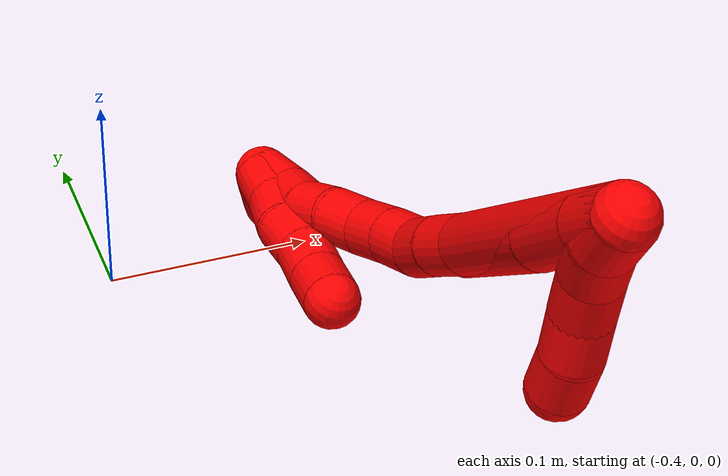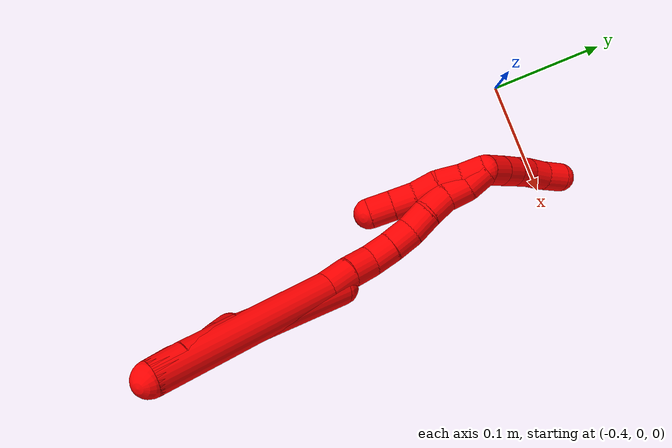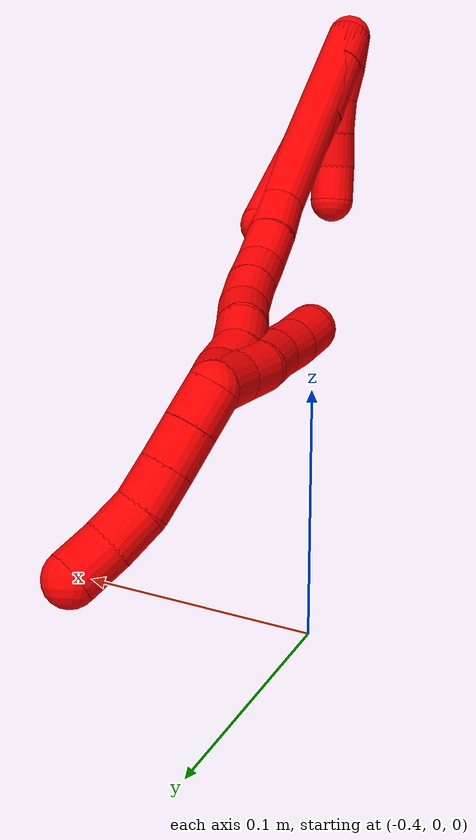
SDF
<sdf version="1.7">
 <world name="default">
  <model name="2">
   <static>0</static>
   <link name="2">
    <collision name="collision-cylinder-e_1_2_8">
     <pose>-0.003775 0.004017 -0.010577 -2.77862 -0.322037 1.44906</pose>
     <geometry><cylinder><radius>0.0125</radius><length>0.023854</length></cylinder></geometry>
     <surface>
      <friction><ode><mu>1.16</mu><mu2>1.16</mu2><slip1>0</slip1><slip2>0</slip2></ode></friction>
      <contact><ode><kp>1e+06</kp><kd>1</kd><max_vel>0</max_vel><min_depth>0.001</min_depth></ode></contact>
     </surface>
    </collision>
    <visual name="visual-cylinder-e_1_2_8">
     <pose>-0.003775 0.004017 -0.010577 -2.77862 -0.322037 1.44906</pose>
     <geometry><cylinder><radius>0.0125</radius><length>0.023854</length></cylinder></geometry>
     <material><ambient>1 0 0 1</ambient></material>
    </visual>
    <collision name="collision-cylinder-e_2_8_9">
     <pose>-0.013259 0.015264 -0.039621 -2.76843 -0.280307 1.28357</pose>
     <geometry><cylinder><radius>0.0125</radius><length>0.041275</length></cylinder></geometry>
     <surface>
      <friction><ode><mu>1.16</mu><mu2>1.16</mu2><slip1>0</slip1><slip2>0</slip2></ode></friction>
      <contact><ode><kp>1e+06</kp><kd>1</kd><max_vel>0</max_vel><min_depth>0.001</min_depth></ode></contact>
     </surface>
    </collision>
    <visual name="visual-cylinder-e_2_8_9">
     <pose>-0.013259 0.015264 -0.039621 -2.76843 -0.280307 1.28357</pose>
     <geometry><cylinder><radius>0.0125</radius><length>0.041275</length></cylinder></geometry>
     <material><ambient>1 0 0 1</ambient></material>
    </visual>
    <collision name="collision-cylinder-e_3_9_6">
     <pose>-0.030662 0.040716 -0.094584 -2.67852 -0.279166 1.07484</pose>
     <geometry><cylinder><radius>0.0125</radius><length>0.084871</length></cylinder></geometry>
     <surface>
      <friction><ode><mu>1.16</mu><mu2>1.16</mu2><slip1>0</slip1><slip2>0</slip2></ode></friction>
      <contact><ode><kp>1e+06</kp><kd>1</kd><max_vel>0</max_vel><min_depth>0.001</min_depth></ode></contact>
     </surface>
    </collision>
    <visual name="visual-cylinder-e_3_9_6">
     <pose>-0.030662 0.040716 -0.094584 -2.67852 -0.279166 1.07484</pose>
     <geometry><cylinder><radius>0.0125</radius><length>0.084871</length></cylinder></geometry>
     <material><ambient>1 0 0 1</ambient></material>
    </visual>
    <collision name="collision-cylinder-e_1_2_10">
     <pose>-0.000248 0.001408 -0.009897 -3.0003 -0.024827 0.347336</pose>
     <geometry><cylinder><radius>0.0125</radius><length>0.02</length></cylinder></geometry>
     <surface>
      <friction><ode><mu>1.16</mu><mu2>1.16</mu2><slip1>0</slip1><slip2>0</slip2></ode></friction>
      <contact><ode><kp>1e+06</kp><kd>1</kd><max_vel>0</max_vel><min_depth>0.001</min_depth></ode></contact>
     </surface>
    </collision>
    <visual name="visual-cylinder-e_1_2_10">
     <pose>-0.000248 0.001408 -0.009897 -3.0003 -0.024827 0.347336</pose>
     <geometry><cylinder><radius>0.0125</radius><length>0.02</length></cylinder></geometry>
     <material><ambient>1 0 0 1</ambient></material>
    </visual>
    <collision name="collision-cylinder-e_2_10_11">
     <pose>0.001083 0.004483 -0.029527 -2.97192 0.1586 -1.50306</pose>
     <geometry><cylinder><radius>0.0125</radius><length>0.02</length></cylinder></geometry>
     <surface>
      <friction><ode><mu>1.16</mu><mu2>1.16</mu2><slip1>0</slip1><slip2>0</slip2></ode></friction>
      <contact><ode><kp>1e+06</kp><kd>1</kd><max_vel>0</max_vel><min_depth>0.001</min_depth></ode></contact>
     </surface>
    </collision>
    <visual name="visual-cylinder-e_2_10_11">
     <pose>0.001083 0.004483 -0.029527 -2.97192 0.1586 -1.50306</pose>
     <geometry><cylinder><radius>0.0125</radius><length>0.02</length></cylinder></geometry>
     <material><ambient>1 0 0 1</ambient></material>
    </visual>
    <collision name="collision-cylinder-e_3_11_12">
     <pose>0.005127 0.005901 -0.048948 3.11591 0.249042 2.9371</pose>
     <geometry><cylinder><radius>0.0125</radius><length>0.02</length></cylinder></geometry>
     <surface>
      <friction><ode><mu>1.16</mu><mu2>1.16</mu2><slip1>0</slip1><slip2>0</slip2></ode></friction>
      <contact><ode><kp>1e+06</kp><kd>1</kd><max_vel>0</max_vel><min_depth>0.001</min_depth></ode></contact>
     </surface>
    </collision>
    <visual name="visual-cylinder-e_3_11_12">
     <pose>0.005127 0.005901 -0.048948 3.11591 0.249042 2.9371</pose>
     <geometry><cylinder><radius>0.0125</radius><length>0.02</length></cylinder></geometry>
     <material><ambient>1 0 0 1</ambient></material>
    </visual>
    <collision name="collision-cylinder-e_4_12_13">
     <pose>0.0105 0.004248 -0.068101 2.9943 0.295082 2.22004</pose>
     <geometry><cylinder><radius>0.0125</radius><length>0.02</length></cylinder></geometry>
     <surface>
      <friction><ode><mu>1.16</mu><mu2>1.16</mu2><slip1>0</slip1><slip2>0</slip2></ode></friction>
      <contact><ode><kp>1e+06</kp><kd>1</kd><max_vel>0</max_vel><min_depth>0.001</min_depth></ode></contact>
     </surface>
    </collision>
    <visual name="visual-cylinder-e_4_12_13">
     <pose>0.0105 0.004248 -0.068101 2.9943 0.295082 2.22004</pose>
     <geometry><cylinder><radius>0.0125</radius><length>0.02</length></cylinder></geometry>
     <material><ambient>1 0 0 1</ambient></material>
    </visual>
    <collision name="collision-cylinder-e_5_13_5">
     <pose>0.014992 0.002451 -0.087431 3.10176 0.159088 2.65189</pose>
     <geometry><cylinder><radius>0.0125</radius><length>0.02</length></cylinder></geometry>
     <surface>
      <friction><ode><mu>1.16</mu><mu2>1.16</mu2><slip1>0</slip1><slip2>0</slip2></ode></friction>
      <contact><ode><kp>1e+06</kp><kd>1</kd><max_vel>0</max_vel><min_depth>0.001</min_depth></ode></contact>
     </surface>
    </collision>
    <visual name="visual-cylinder-e_5_13_5">
     <pose>0.014992 0.002451 -0.087431 3.10176 0.159088 2.65189</pose>
     <geometry><cylinder><radius>0.0125</radius><length>0.02</length></cylinder></geometry>
     <material><ambient>1 0 0 1</ambient></material>
    </visual>
    <collision name="collision-cylinder-e_1_2_14">
     <pose>-0.021163 0.025268 -0.05984 -2.74205 -0.314953 1.33014</pose>
     <geometry><cylinder><radius>0.0125</radius><length>0.136634</length></cylinder></geometry>
     <surface>
      <friction><ode><mu>1.16</mu><mu2>1.16</mu2><slip1>0</slip1><slip2>0</slip2></ode></friction>
      <contact><ode><kp>1e+06</kp><kd>1</kd><max_vel>0</max_vel><min_depth>0.001</min_depth></ode></contact>
     </surface>
    </collision>
    <visual name="visual-cylinder-e_1_2_14">
     <pose>-0.021163 0.025268 -0.05984 -2.74205 -0.314953 1.33014</pose>
     <geometry><cylinder><radius>0.0125</radius><length>0.136634</length></cylinder></geometry>
     <material><ambient>1 0 0 1</ambient></material>
    </visual>
    <collision name="collision-cylinder-e_2_14_15">
     <pose>-0.047097 0.053813 -0.129092 -2.80657 -0.446541 1.86135</pose>
     <geometry><cylinder><radius>0.0125</radius><length>0.022096</length></cylinder></geometry>
     <surface>
      <friction><ode><mu>1.16</mu><mu2>1.16</mu2><slip1>0</slip1><slip2>0</slip2></ode></friction>
      <contact><ode><kp>1e+06</kp><kd>1</kd><max_vel>0</max_vel><min_depth>0.001</min_depth></ode></contact>
     </surface>
    </collision>
    <visual name="visual-cylinder-e_2_14_15">
     <pose>-0.047097 0.053813 -0.129092 -2.80657 -0.446541 1.86135</pose>
     <geometry><cylinder><radius>0.0125</radius><length>0.022096</length></cylinder></geometry>
     <material><ambient>1 0 0 1</ambient></material>
    </visual>
    <collision name="collision-cylinder-e_3_15_16">
     <pose>-0.055597 0.060862 -0.147655 -2.75053 -0.360288 1.48698</pose>
     <geometry><cylinder><radius>0.0125</radius><length>0.021159</length></cylinder></geometry>
     <surface>
      <friction><ode><mu>1.16</mu><mu2>1.16</mu2><slip1>0</slip1><slip2>0</slip2></ode></friction>
      <contact><ode><kp>1e+06</kp><kd>1</kd><max_vel>0</max_vel><min_depth>0.001</min_depth></ode></contact>
     </surface>
    </collision>
    <visual name="visual-cylinder-e_3_15_16">
     <pose>-0.055597 0.060862 -0.147655 -2.75053 -0.360288 1.48698</pose>
     <geometry><cylinder><radius>0.0125</radius><length>0.021159</length></cylinder></geometry>
     <material><ambient>1 0 0 1</ambient></material>
    </visual>
    <collision name="collision-cylinder-e_4_16_17">
     <pose>-0.065603 0.068457 -0.163611 -2.62979 -0.677412 1.86397</pose>
     <geometry><cylinder><radius>0.0125</radius><length>0.020027</length></cylinder></geometry>
     <surface>
      <friction><ode><mu>1.16</mu><mu2>1.16</mu2><slip1>0</slip1><slip2>0</slip2></ode></friction>
      <contact><ode><kp>1e+06</kp><kd>1</kd><max_vel>0</max_vel><min_depth>0.001</min_depth></ode></contact>
     </surface>
    </collision>
    <visual name="visual-cylinder-e_4_16_17">
     <pose>-0.065603 0.068457 -0.163611 -2.62979 -0.677412 1.86397</pose>
     <geometry><cylinder><radius>0.0125</radius><length>0.020027</length></cylinder></geometry>
     <material><ambient>1 0 0 1</ambient></material>
    </visual>
    <collision name="collision-cylinder-e_5_17_18">
     <pose>-0.078308 0.075418 -0.17741 -2.71979 -0.697596 2.07748</pose>
     <geometry><cylinder><radius>0.0125</radius><length>0.020013</length></cylinder></geometry>
     <surface>
      <friction><ode><mu>1.16</mu><mu2>1.16</mu2><slip1>0</slip1><slip2>0</slip2></ode></friction>
      <contact><ode><kp>1e+06</kp><kd>1</kd><max_vel>0</max_vel><min_depth>0.001</min_depth></ode></contact>
     </surface>
    </collision>
    <visual name="visual-cylinder-e_5_17_18">
     <pose>-0.078308 0.075418 -0.17741 -2.71979 -0.697596 2.07748</pose>
     <geometry><cylinder><radius>0.0125</radius><length>0.020013</length></cylinder></geometry>
     <material><ambient>1 0 0 1</ambient></material>
    </visual>
    <collision name="collision-cylinder-e_6_18_19">
     <pose>-0.09271 0.08067 -0.190106 -2.78667 -0.919508 2.44656</pose>
     <geometry><cylinder><radius>0.0125</radius><length>0.020053</length></cylinder></geometry>
     <surface>
      <friction><ode><mu>1.16</mu><mu2>1.16</mu2><slip1>0</slip1><slip2>0</slip2></ode></friction>
      <contact><ode><kp>1e+06</kp><kd>1</kd><max_vel>0</max_vel><min_depth>0.001</min_depth></ode></contact>
     </surface>
    </collision>
    <visual name="visual-cylinder-e_6_18_19">
     <pose>-0.09271 0.08067 -0.190106 -2.78667 -0.919508 2.44656</pose>
     <geometry><cylinder><radius>0.0125</radius><length>0.020053</length></cylinder></geometry>
     <material><ambient>1 0 0 1</ambient></material>
    </visual>
    <collision name="collision-cylinder-e_7_19_20">
     <pose>-0.107373 0.085252 -0.20282 -2.8031 -0.732536 2.30338</pose>
     <geometry><cylinder><radius>0.0125</radius><length>0.020006</length></cylinder></geometry>
     <surface>
      <friction><ode><mu>1.16</mu><mu2>1.16</mu2><slip1>0</slip1><slip2>0</slip2></ode></friction>
      <contact><ode><kp>1e+06</kp><kd>1</kd><max_vel>0</max_vel><min_depth>0.001</min_depth></ode></contact>
     </surface>
    </collision>
    <visual name="visual-cylinder-e_7_19_20">
     <pose>-0.107373 0.085252 -0.20282 -2.8031 -0.732536 2.30338</pose>
     <geometry><cylinder><radius>0.0125</radius><length>0.020006</length></cylinder></geometry>
     <material><ambient>1 0 0 1</ambient></material>
    </visual>
    <collision name="collision-cylinder-e_8_20_21">
     <pose>-0.120219 0.09292 -0.21576 -2.42142 -0.663055 1.48131</pose>
     <geometry><cylinder><radius>0.0125</radius><length>0.020002</length></cylinder></geometry>
     <surface>
      <friction><ode><mu>1.16</mu><mu2>1.16</mu2><slip1>0</slip1><slip2>0</slip2></ode></friction>
      <contact><ode><kp>1e+06</kp><kd>1</kd><max_vel>0</max_vel><min_depth>0.001</min_depth></ode></contact>
     </surface>
    </collision>
    <visual name="visual-cylinder-e_8_20_21">
     <pose>-0.120219 0.09292 -0.21576 -2.42142 -0.663055 1.48131</pose>
     <geometry><cylinder><radius>0.0125</radius><length>0.020002</length></cylinder></geometry>
     <material><ambient>1 0 0 1</ambient></material>
    </visual>
    <collision name="collision-cylinder-e_9_21_1">
     <pose>-0.134832 0.101445 -0.225868 -2.46974 -1.00724 2.01198</pose>
     <geometry><cylinder><radius>0.0125</radius><length>0.02001</length></cylinder></geometry>
     <surface>
      <friction><ode><mu>1.16</mu><mu2>1.16</mu2><slip1>0</slip1><slip2>0</slip2></ode></friction>
      <contact><ode><kp>1e+06</kp><kd>1</kd><max_vel>0</max_vel><min_depth>0.001</min_depth></ode></contact>
     </surface>
    </collision>
    <visual name="visual-cylinder-e_9_21_1">
     <pose>-0.134832 0.101445 -0.225868 -2.46974 -1.00724 2.01198</pose>
     <geometry><cylinder><radius>0.0125</radius><length>0.02001</length></cylinder></geometry>
     <material><ambient>1 0 0 1</ambient></material>
    </visual>
    <collision name="collision-cylinder-e_1_1_22">
     <pose>-0.142972 0.109417 -0.238901 -2.65819 0.031877 -0.129141</pose>
     <geometry><cylinder><radius>0.0125</radius><length>0.02</length></cylinder></geometry>
     <surface>
      <friction><ode><mu>1.16</mu><mu2>1.16</mu2><slip1>0</slip1><slip2>0</slip2></ode></friction>
      <contact><ode><kp>1e+06</kp><kd>1</kd><max_vel>0</max_vel><min_depth>0.001</min_depth></ode></contact>
     </surface>
    </collision>
    <visual name="visual-cylinder-e_1_1_22">
     <pose>-0.142972 0.109417 -0.238901 -2.65819 0.031877 -0.129141</pose>
     <geometry><cylinder><radius>0.0125</radius><length>0.02</length></cylinder></geometry>
     <material><ambient>1 0 0 1</ambient></material>
    </visual>
    <collision name="collision-cylinder-e_2_22_23">
     <pose>-0.142124 0.118638 -0.256627 -2.6657 0.052866 -0.21716</pose>
     <geometry><cylinder><radius>0.0125</radius><length>0.02</length></cylinder></geometry>
     <surface>
      <friction><ode><mu>1.16</mu><mu2>1.16</mu2><slip1>0</slip1><slip2>0</slip2></ode></friction>
      <contact><ode><kp>1e+06</kp><kd>1</kd><max_vel>0</max_vel><min_depth>0.001</min_depth></ode></contact>
     </surface>
    </collision>
    <visual name="visual-cylinder-e_2_22_23">
     <pose>-0.142124 0.118638 -0.256627 -2.6657 0.052866 -0.21716</pose>
     <geometry><cylinder><radius>0.0125</radius><length>0.02</length></cylinder></geometry>
     <material><ambient>1 0 0 1</ambient></material>
    </visual>
    <collision name="collision-cylinder-e_3_23_24">
     <pose>-0.141214 0.127955 -0.274299 -2.64713 0.038233 -0.151209</pose>
     <geometry><cylinder><radius>0.0125</radius><length>0.02</length></cylinder></geometry>
     <surface>
      <friction><ode><mu>1.16</mu><mu2>1.16</mu2><slip1>0</slip1><slip2>0</slip2></ode></friction>
      <contact><ode><kp>1e+06</kp><kd>1</kd><max_vel>0</max_vel><min_depth>0.001</min_depth></ode></contact>
     </surface>
    </collision>
    <visual name="visual-cylinder-e_3_23_24">
     <pose>-0.141214 0.127955 -0.274299 -2.64713 0.038233 -0.151209</pose>
     <geometry><cylinder><radius>0.0125</radius><length>0.02</length></cylinder></geometry>
     <material><ambient>1 0 0 1</ambient></material>
    </visual>
    <collision name="collision-cylinder-e_4_24_25">
     <pose>-0.140489 0.139241 -0.290648 -2.42764 0.034247 -0.09177</pose>
     <geometry><cylinder><radius>0.0125</radius><length>0.02</length></cylinder></geometry>
     <surface>
      <friction><ode><mu>1.16</mu><mu2>1.16</mu2><slip1>0</slip1><slip2>0</slip2></ode></friction>
      <contact><ode><kp>1e+06</kp><kd>1</kd><max_vel>0</max_vel><min_depth>0.001</min_depth></ode></contact>
     </surface>
    </collision>
    <visual name="visual-cylinder-e_4_24_25">
     <pose>-0.140489 0.139241 -0.290648 -2.42764 0.034247 -0.09177</pose>
     <geometry><cylinder><radius>0.0125</radius><length>0.02</length></cylinder></geometry>
     <material><ambient>1 0 0 1</ambient></material>
    </visual>
    <collision name="collision-cylinder-e_5_25_4">
     <pose>-0.141222 0.152988 -0.305055 -2.33134 -0.107716 0.250106</pose>
     <geometry><cylinder><radius>0.0125</radius><length>0.02</length></cylinder></geometry>
     <surface>
      <friction><ode><mu>1.16</mu><mu2>1.16</mu2><slip1>0</slip1><slip2>0</slip2></ode></friction>
      <contact><ode><kp>1e+06</kp><kd>1</kd><max_vel>0</max_vel><min_depth>0.001</min_depth></ode></contact>
     </surface>
    </collision>
    <visual name="visual-cylinder-e_5_25_4">
     <pose>-0.141222 0.152988 -0.305055 -2.33134 -0.107716 0.250106</pose>
     <geometry><cylinder><radius>0.0125</radius><length>0.02</length></cylinder></geometry>
     <material><ambient>1 0 0 1</ambient></material>
    </visual>
    <collision name="collision-cylinder-e_1_1_26">
     <pose>-0.136347 0.09837 -0.226764 1.09643 0.767509 0.483484</pose>
     <geometry><cylinder><radius>0.0125</radius><length>0.02</length></cylinder></geometry>
     <surface>
      <friction><ode><mu>1.16</mu><mu2>1.16</mu2><slip1>0</slip1><slip2>0</slip2></ode></friction>
      <contact><ode><kp>1e+06</kp><kd>1</kd><max_vel>0</max_vel><min_depth>0.001</min_depth></ode></contact>
     </surface>
    </collision>
    <visual name="visual-cylinder-e_1_1_26">
     <pose>-0.136347 0.09837 -0.226764 1.09643 0.767509 0.483484</pose>
     <geometry><cylinder><radius>0.0125</radius><length>0.02</length></cylinder></geometry>
     <material><ambient>1 0 0 1</ambient></material>
    </visual>
    <collision name="collision-cylinder-e_2_26_27">
     <pose>-0.12344 0.08481 -0.219844 1.1012 0.638933 0.400726</pose>
     <geometry><cylinder><radius>0.0125</radius><length>0.02</length></cylinder></geometry>
     <surface>
      <friction><ode><mu>1.16</mu><mu2>1.16</mu2><slip1>0</slip1><slip2>0</slip2></ode></friction>
      <contact><ode><kp>1e+06</kp><kd>1</kd><max_vel>0</max_vel><min_depth>0.001</min_depth></ode></contact>
     </surface>
    </collision>
    <visual name="visual-cylinder-e_2_26_27">
     <pose>-0.12344 0.08481 -0.219844 1.1012 0.638933 0.400726</pose>
     <geometry><cylinder><radius>0.0125</radius><length>0.02</length></cylinder></geometry>
     <material><ambient>1 0 0 1</ambient></material>
    </visual>
    <collision name="collision-cylinder-e_3_27_28">
     <pose>-0.109971 0.07241 -0.212188 0.916012 0.848899 0.438405</pose>
     <geometry><cylinder><radius>0.0125</radius><length>0.02</length></cylinder></geometry>
     <surface>
      <friction><ode><mu>1.16</mu><mu2>1.16</mu2><slip1>0</slip1><slip2>0</slip2></ode></friction>
      <contact><ode><kp>1e+06</kp><kd>1</kd><max_vel>0</max_vel><min_depth>0.001</min_depth></ode></contact>
     </surface>
    </collision>
    <visual name="visual-cylinder-e_3_27_28">
     <pose>-0.109971 0.07241 -0.212188 0.916012 0.848899 0.438405</pose>
     <geometry><cylinder><radius>0.0125</radius><length>0.02</length></cylinder></geometry>
     <material><ambient>1 0 0 1</ambient></material>
    </visual>
    <collision name="collision-cylinder-e_4_28_29">
     <pose>-0.095915 0.06071 -0.204241 1.02498 0.71419 0.413815</pose>
     <geometry><cylinder><radius>0.0125</radius><length>0.02</length></cylinder></geometry>
     <surface>
      <friction><ode><mu>1.16</mu><mu2>1.16</mu2><slip1>0</slip1><slip2>0</slip2></ode></friction>
      <contact><ode><kp>1e+06</kp><kd>1</kd><max_vel>0</max_vel><min_depth>0.001</min_depth></ode></contact>
     </surface>
    </collision>
    <visual name="visual-cylinder-e_4_28_29">
     <pose>-0.095915 0.06071 -0.204241 1.02498 0.71419 0.413815</pose>
     <geometry><cylinder><radius>0.0125</radius><length>0.02</length></cylinder></geometry>
     <material><ambient>1 0 0 1</ambient></material>
    </visual>
    <collision name="collision-cylinder-e_5_29_3">
     <pose>-0.083356 0.047914 -0.195447 0.915485 0.644641 0.326129</pose>
     <geometry><cylinder><radius>0.0125</radius><length>0.02</length></cylinder></geometry>
     <surface>
      <friction><ode><mu>1.16</mu><mu2>1.16</mu2><slip1>0</slip1><slip2>0</slip2></ode></friction>
      <contact><ode><kp>1e+06</kp><kd>1</kd><max_vel>0</max_vel><min_depth>0.001</min_depth></ode></contact>
     </surface>
    </collision>
    <visual name="visual-cylinder-e_5_29_3">
     <pose>-0.083356 0.047914 -0.195447 0.915485 0.644641 0.326129</pose>
     <geometry><cylinder><radius>0.0125</radius><length>0.02</length></cylinder></geometry>
     <material><ambient>1 0 0 1</ambient></material>
    </visual>
    <collision name="collision-sphere-3">
     <pose>-0.077347 0.041577 -0.190576 0 -0 0</pose>
     <geometry><sphere><radius>0.0125</radius></sphere></geometry>
     <surface>
      <friction><ode><mu>1.16</mu><mu2>1.16</mu2><slip1>0</slip1><slip2>0</slip2></ode></friction>
      <contact><ode><kp>1e+06</kp><kd>1</kd><max_vel>0</max_vel><min_depth>0.001</min_depth></ode></contact>
     </surface>
    </collision>
    <visual name="visual-sphere-3">
     <pose>-0.077347 0.041577 -0.190576 0 -0 0</pose>
     <geometry><sphere><radius>0.0125</radius></sphere></geometry>
     <material><ambient>1 0 0 1</ambient></material>
    </visual>
    <collision name="collision-sphere-29">
     <pose>-0.089365 0.054252 -0.200318 0 -0 0</pose>
     <geometry><sphere><radius>0.0125</radius></sphere></geometry>
     <surface>
      <friction><ode><mu>1.16</mu><mu2>1.16</mu2><slip1>0</slip1><slip2>0</slip2></ode></friction>
      <contact><ode><kp>1e+06</kp><kd>1</kd><max_vel>0</max_vel><min_depth>0.001</min_depth></ode></contact>
     </surface>
    </collision>
    <visual name="visual-sphere-29">
     <pose>-0.089365 0.054252 -0.200318 0 -0 0</pose>
     <geometry><sphere><radius>0.0125</radius></sphere></geometry>
     <material><ambient>1 0 0 1</ambient></material>
    </visual>
    <collision name="collision-sphere-28">
     <pose>-0.102466 0.067168 -0.208163 0 -0 0</pose>
     <geometry><sphere><radius>0.0125</radius></sphere></geometry>
     <surface>
      <friction><ode><mu>1.16</mu><mu2>1.16</mu2><slip1>0</slip1><slip2>0</slip2></ode></friction>
      <contact><ode><kp>1e+06</kp><kd>1</kd><max_vel>0</max_vel><min_depth>0.001</min_depth></ode></contact>
     </surface>
    </collision>
    <visual name="visual-sphere-28">
     <pose>-0.102466 0.067168 -0.208163 0 -0 0</pose>
     <geometry><sphere><radius>0.0125</radius></sphere></geometry>
     <material><ambient>1 0 0 1</ambient></material>
    </visual>
    <collision name="collision-sphere-27">
     <pose>-0.117477 0.077651 -0.216212 0 -0 0</pose>
     <geometry><sphere><radius>0.0125</radius></sphere></geometry>
     <surface>
      <friction><ode><mu>1.16</mu><mu2>1.16</mu2><slip1>0</slip1><slip2>0</slip2></ode></friction>
      <contact><ode><kp>1e+06</kp><kd>1</kd><max_vel>0</max_vel><min_depth>0.001</min_depth></ode></contact>
     </surface>
    </collision>
    <visual name="visual-sphere-27">
     <pose>-0.117477 0.077651 -0.216212 0 -0 0</pose>
     <geometry><sphere><radius>0.0125</radius></sphere></geometry>
     <material><ambient>1 0 0 1</ambient></material>
    </visual>
    <collision name="collision-sphere-26">
     <pose>-0.129403 0.091968 -0.223477 0 -0 0</pose>
     <geometry><sphere><radius>0.0125</radius></sphere></geometry>
     <surface>
      <friction><ode><mu>1.16</mu><mu2>1.16</mu2><slip1>0</slip1><slip2>0</slip2></ode></friction>
      <contact><ode><kp>1e+06</kp><kd>1</kd><max_vel>0</max_vel><min_depth>0.001</min_depth></ode></contact>
     </surface>
    </collision>
    <visual name="visual-sphere-26">
     <pose>-0.129403 0.091968 -0.223477 0 -0 0</pose>
     <geometry><sphere><radius>0.0125</radius></sphere></geometry>
     <material><ambient>1 0 0 1</ambient></material>
    </visual>
    <collision name="collision-sphere-4">
     <pose>-0.142297 0.160191 -0.311908 0 -0 0</pose>
     <geometry><sphere><radius>0.0125</radius></sphere></geometry>
     <surface>
      <friction><ode><mu>1.16</mu><mu2>1.16</mu2><slip1>0</slip1><slip2>0</slip2></ode></friction>
      <contact><ode><kp>1e+06</kp><kd>1</kd><max_vel>0</max_vel><min_depth>0.001</min_depth></ode></contact>
     </surface>
    </collision>
    <visual name="visual-sphere-4">
     <pose>-0.142297 0.160191 -0.311908 0 -0 0</pose>
     <geometry><sphere><radius>0.0125</radius></sphere></geometry>
     <material><ambient>1 0 0 1</ambient></material>
    </visual>
    <collision name="collision-sphere-25">
     <pose>-0.140147 0.145786 -0.298202 0 -0 0</pose>
     <geometry><sphere><radius>0.0125</radius></sphere></geometry>
     <surface>
      <friction><ode><mu>1.16</mu><mu2>1.16</mu2><slip1>0</slip1><slip2>0</slip2></ode></friction>
      <contact><ode><kp>1e+06</kp><kd>1</kd><max_vel>0</max_vel><min_depth>0.001</min_depth></ode></contact>
     </surface>
    </collision>
    <visual name="visual-sphere-25">
     <pose>-0.140147 0.145786 -0.298202 0 -0 0</pose>
     <geometry><sphere><radius>0.0125</radius></sphere></geometry>
     <material><ambient>1 0 0 1</ambient></material>
    </visual>
    <collision name="collision-sphere-24">
     <pose>-0.140832 0.132697 -0.283095 0 -0 0</pose>
     <geometry><sphere><radius>0.0125</radius></sphere></geometry>
     <surface>
      <friction><ode><mu>1.16</mu><mu2>1.16</mu2><slip1>0</slip1><slip2>0</slip2></ode></friction>
      <contact><ode><kp>1e+06</kp><kd>1</kd><max_vel>0</max_vel><min_depth>0.001</min_depth></ode></contact>
     </surface>
    </collision>
    <visual name="visual-sphere-24">
     <pose>-0.140832 0.132697 -0.283095 0 -0 0</pose>
     <geometry><sphere><radius>0.0125</radius></sphere></geometry>
     <material><ambient>1 0 0 1</ambient></material>
    </visual>
    <collision name="collision-sphere-23">
     <pose>-0.141596 0.123213 -0.265503 0 -0 0</pose>
     <geometry><sphere><radius>0.0125</radius></sphere></geometry>
     <surface>
      <friction><ode><mu>1.16</mu><mu2>1.16</mu2><slip1>0</slip1><slip2>0</slip2></ode></friction>
      <contact><ode><kp>1e+06</kp><kd>1</kd><max_vel>0</max_vel><min_depth>0.001</min_depth></ode></contact>
     </surface>
    </collision>
    <visual name="visual-sphere-23">
     <pose>-0.141596 0.123213 -0.265503 0 -0 0</pose>
     <geometry><sphere><radius>0.0125</radius></sphere></geometry>
     <material><ambient>1 0 0 1</ambient></material>
    </visual>
    <collision name="collision-sphere-22">
     <pose>-0.142653 0.114063 -0.247751 0 -0 0</pose>
     <geometry><sphere><radius>0.0125</radius></sphere></geometry>
     <surface>
      <friction><ode><mu>1.16</mu><mu2>1.16</mu2><slip1>0</slip1><slip2>0</slip2></ode></friction>
      <contact><ode><kp>1e+06</kp><kd>1</kd><max_vel>0</max_vel><min_depth>0.001</min_depth></ode></contact>
     </surface>
    </collision>
    <visual name="visual-sphere-22">
     <pose>-0.142653 0.114063 -0.247751 0 -0 0</pose>
     <geometry><sphere><radius>0.0125</radius></sphere></geometry>
     <material><ambient>1 0 0 1</ambient></material>
    </visual>
    <collision name="collision-sphere-1">
     <pose>-0.14329 0.104772 -0.230051 0 -0 0</pose>
     <geometry><sphere><radius>0.0125</radius></sphere></geometry>
     <surface>
      <friction><ode><mu>1.16</mu><mu2>1.16</mu2><slip1>0</slip1><slip2>0</slip2></ode></friction>
      <contact><ode><kp>1e+06</kp><kd>1</kd><max_vel>0</max_vel><min_depth>0.001</min_depth></ode></contact>
     </surface>
    </collision>
    <visual name="visual-sphere-1">
     <pose>-0.14329 0.104772 -0.230051 0 -0 0</pose>
     <geometry><sphere><radius>0.0125</radius></sphere></geometry>
     <material><ambient>1 0 0 1</ambient></material>
    </visual>
    <collision name="collision-sphere-21">
     <pose>-0.126374 0.098118 -0.221685 0 -0 0</pose>
     <geometry><sphere><radius>0.0125</radius></sphere></geometry>
     <surface>
      <friction><ode><mu>1.16</mu><mu2>1.16</mu2><slip1>0</slip1><slip2>0</slip2></ode></friction>
      <contact><ode><kp>1e+06</kp><kd>1</kd><max_vel>0</max_vel><min_depth>0.001</min_depth></ode></contact>
     </surface>
    </collision>
    <visual name="visual-sphere-21">
     <pose>-0.126374 0.098118 -0.221685 0 -0 0</pose>
     <geometry><sphere><radius>0.0125</radius></sphere></geometry>
     <material><ambient>1 0 0 1</ambient></material>
    </visual>
    <collision name="collision-sphere-11">
     <pose>0.002662 0.00615 -0.03926 0 -0 0</pose>
     <geometry><sphere><radius>0.0125</radius></sphere></geometry>
     <surface>
      <friction><ode><mu>1.16</mu><mu2>1.16</mu2><slip1>0</slip1><slip2>0</slip2></ode></friction>
      <contact><ode><kp>1e+06</kp><kd>1</kd><max_vel>0</max_vel><min_depth>0.001</min_depth></ode></contact>
     </surface>
    </collision>
    <visual name="visual-sphere-11">
     <pose>0.002662 0.00615 -0.03926 0 -0 0</pose>
     <geometry><sphere><radius>0.0125</radius></sphere></geometry>
     <material><ambient>1 0 0 1</ambient></material>
    </visual>
    <collision name="collision-sphere-10">
     <pose>-0.000496 0.002816 -0.019795 0 -0 0</pose>
     <geometry><sphere><radius>0.0125</radius></sphere></geometry>
     <surface>
      <friction><ode><mu>1.16</mu><mu2>1.16</mu2><slip1>0</slip1><slip2>0</slip2></ode></friction>
      <contact><ode><kp>1e+06</kp><kd>1</kd><max_vel>0</max_vel><min_depth>0.001</min_depth></ode></contact>
     </surface>
    </collision>
    <visual name="visual-sphere-10">
     <pose>-0.000496 0.002816 -0.019795 0 -0 0</pose>
     <geometry><sphere><radius>0.0125</radius></sphere></geometry>
     <material><ambient>1 0 0 1</ambient></material>
    </visual>
    <collision name="collision-sphere-6">
     <pose>-0.042355 0.058938 -0.131081 0 -0 0</pose>
     <geometry><sphere><radius>0.0125</radius></sphere></geometry>
     <surface>
      <friction><ode><mu>1.16</mu><mu2>1.16</mu2><slip1>0</slip1><slip2>0</slip2></ode></friction>
      <contact><ode><kp>1e+06</kp><kd>1</kd><max_vel>0</max_vel><min_depth>0.001</min_depth></ode></contact>
     </surface>
    </collision>
    <visual name="visual-sphere-6">
     <pose>-0.042355 0.058938 -0.131081 0 -0 0</pose>
     <geometry><sphere><radius>0.0125</radius></sphere></geometry>
     <material><ambient>1 0 0 1</ambient></material>
    </visual>
    <collision name="collision-sphere-9">
     <pose>-0.018968 0.022494 -0.058088 0 -0 0</pose>
     <geometry><sphere><radius>0.0125</radius></sphere></geometry>
     <surface>
      <friction><ode><mu>1.16</mu><mu2>1.16</mu2><slip1>0</slip1><slip2>0</slip2></ode></friction>
      <contact><ode><kp>1e+06</kp><kd>1</kd><max_vel>0</max_vel><min_depth>0.001</min_depth></ode></contact>
     </surface>
    </collision>
    <visual name="visual-sphere-9">
     <pose>-0.018968 0.022494 -0.058088 0 -0 0</pose>
     <geometry><sphere><radius>0.0125</radius></sphere></geometry>
     <material><ambient>1 0 0 1</ambient></material>
    </visual>
    <collision name="collision-sphere-2">
     <geometry><sphere><radius>0.0125</radius></sphere></geometry>
     <surface>
      <friction><ode><mu>1.16</mu><mu2>1.16</mu2><slip1>0</slip1><slip2>0</slip2></ode></friction>
      <contact><ode><kp>1e+06</kp><kd>1</kd><max_vel>0</max_vel><min_depth>0.001</min_depth></ode></contact>
     </surface>
    </collision>
    <visual name="visual-sphere-2">
     <geometry><sphere><radius>0.0125</radius></sphere></geometry>
     <material><ambient>1 0 0 1</ambient></material>
    </visual>
    <collision name="collision-sphere-19">
     <pose>-0.100683 0.082783 -0.195805 0 -0 0</pose>
     <geometry><sphere><radius>0.0125</radius></sphere></geometry>
     <surface>
      <friction><ode><mu>1.16</mu><mu2>1.16</mu2><slip1>0</slip1><slip2>0</slip2></ode></friction>
      <contact><ode><kp>1e+06</kp><kd>1</kd><max_vel>0</max_vel><min_depth>0.001</min_depth></ode></contact>
     </surface>
    </collision>
    <visual name="visual-sphere-19">
     <pose>-0.100683 0.082783 -0.195805 0 -0 0</pose>
     <geometry><sphere><radius>0.0125</radius></sphere></geometry>
     <material><ambient>1 0 0 1</ambient></material>
    </visual>
    <collision name="collision-sphere-8">
     <pose>-0.00755 0.008034 -0.021154 0 -0 0</pose>
     <geometry><sphere><radius>0.0125</radius></sphere></geometry>
     <surface>
      <friction><ode><mu>1.16</mu><mu2>1.16</mu2><slip1>0</slip1><slip2>0</slip2></ode></friction>
      <contact><ode><kp>1e+06</kp><kd>1</kd><max_vel>0</max_vel><min_depth>0.001</min_depth></ode></contact>
     </surface>
    </collision>
    <visual name="visual-sphere-8">
     <pose>-0.00755 0.008034 -0.021154 0 -0 0</pose>
     <geometry><sphere><radius>0.0125</radius></sphere></geometry>
     <material><ambient>1 0 0 1</ambient></material>
    </visual>
    <collision name="collision-sphere-12">
     <pose>0.007592 0.005653 -0.058637 0 -0 0</pose>
     <geometry><sphere><radius>0.0125</radius></sphere></geometry>
     <surface>
      <friction><ode><mu>1.16</mu><mu2>1.16</mu2><slip1>0</slip1><slip2>0</slip2></ode></friction>
      <contact><ode><kp>1e+06</kp><kd>1</kd><max_vel>0</max_vel><min_depth>0.001</min_depth></ode></contact>
     </surface>
    </collision>
    <visual name="visual-sphere-12">
     <pose>0.007592 0.005653 -0.058637 0 -0 0</pose>
     <geometry><sphere><radius>0.0125</radius></sphere></geometry>
     <material><ambient>1 0 0 1</ambient></material>
    </visual>
    <collision name="collision-sphere-13">
     <pose>0.013408 0.002844 -0.077565 0 -0 0</pose>
     <geometry><sphere><radius>0.0125</radius></sphere></geometry>
     <surface>
      <friction><ode><mu>1.16</mu><mu2>1.16</mu2><slip1>0</slip1><slip2>0</slip2></ode></friction>
      <contact><ode><kp>1e+06</kp><kd>1</kd><max_vel>0</max_vel><min_depth>0.001</min_depth></ode></contact>
     </surface>
    </collision>
    <visual name="visual-sphere-13">
     <pose>0.013408 0.002844 -0.077565 0 -0 0</pose>
     <geometry><sphere><radius>0.0125</radius></sphere></geometry>
     <material><ambient>1 0 0 1</ambient></material>
    </visual>
    <collision name="collision-sphere-5">
     <pose>0.016576 0.002058 -0.097297 0 -0 0</pose>
     <geometry><sphere><radius>0.0125</radius></sphere></geometry>
     <surface>
      <friction><ode><mu>1.16</mu><mu2>1.16</mu2><slip1>0</slip1><slip2>0</slip2></ode></friction>
      <contact><ode><kp>1e+06</kp><kd>1</kd><max_vel>0</max_vel><min_depth>0.001</min_depth></ode></contact>
     </surface>
    </collision>
    <visual name="visual-sphere-5">
     <pose>0.016576 0.002058 -0.097297 0 -0 0</pose>
     <geometry><sphere><radius>0.0125</radius></sphere></geometry>
     <material><ambient>1 0 0 1</ambient></material>
    </visual>
    <collision name="collision-sphere-14">
     <pose>-0.042325 0.050536 -0.119681 0 -0 0</pose>
     <geometry><sphere><radius>0.0125</radius></sphere></geometry>
     <surface>
      <friction><ode><mu>1.16</mu><mu2>1.16</mu2><slip1>0</slip1><slip2>0</slip2></ode></friction>
      <contact><ode><kp>1e+06</kp><kd>1</kd><max_vel>0</max_vel><min_depth>0.001</min_depth></ode></contact>
     </surface>
    </collision>
    <visual name="visual-sphere-14">
     <pose>-0.042325 0.050536 -0.119681 0 -0 0</pose>
     <geometry><sphere><radius>0.0125</radius></sphere></geometry>
     <material><ambient>1 0 0 1</ambient></material>
    </visual>
    <collision name="collision-sphere-15">
     <pose>-0.051868 0.057089 -0.138502 0 -0 0</pose>
     <geometry><sphere><radius>0.0125</radius></sphere></geometry>
     <surface>
      <friction><ode><mu>1.16</mu><mu2>1.16</mu2><slip1>0</slip1><slip2>0</slip2></ode></friction>
      <contact><ode><kp>1e+06</kp><kd>1</kd><max_vel>0</max_vel><min_depth>0.001</min_depth></ode></contact>
     </surface>
    </collision>
    <visual name="visual-sphere-15">
     <pose>-0.051868 0.057089 -0.138502 0 -0 0</pose>
     <geometry><sphere><radius>0.0125</radius></sphere></geometry>
     <material><ambient>1 0 0 1</ambient></material>
    </visual>
    <collision name="collision-sphere-16">
     <pose>-0.059327 0.064636 -0.156808 0 -0 0</pose>
     <geometry><sphere><radius>0.0125</radius></sphere></geometry>
     <surface>
      <friction><ode><mu>1.16</mu><mu2>1.16</mu2><slip1>0</slip1><slip2>0</slip2></ode></friction>
      <contact><ode><kp>1e+06</kp><kd>1</kd><max_vel>0</max_vel><min_depth>0.001</min_depth></ode></contact>
     </surface>
    </collision>
    <visual name="visual-sphere-16">
     <pose>-0.059327 0.064636 -0.156808 0 -0 0</pose>
     <geometry><sphere><radius>0.0125</radius></sphere></geometry>
     <material><ambient>1 0 0 1</ambient></material>
    </visual>
    <collision name="collision-sphere-17">
     <pose>-0.07188 0.072279 -0.170413 0 -0 0</pose>
     <geometry><sphere><radius>0.0125</radius></sphere></geometry>
     <surface>
      <friction><ode><mu>1.16</mu><mu2>1.16</mu2><slip1>0</slip1><slip2>0</slip2></ode></friction>
      <contact><ode><kp>1e+06</kp><kd>1</kd><max_vel>0</max_vel><min_depth>0.001</min_depth></ode></contact>
     </surface>
    </collision>
    <visual name="visual-sphere-17">
     <pose>-0.07188 0.072279 -0.170413 0 -0 0</pose>
     <geometry><sphere><radius>0.0125</radius></sphere></geometry>
     <material><ambient>1 0 0 1</ambient></material>
    </visual>
    <collision name="collision-sphere-18">
     <pose>-0.084736 0.078558 -0.184407 0 -0 0</pose>
     <geometry><sphere><radius>0.0125</radius></sphere></geometry>
     <surface>
      <friction><ode><mu>1.16</mu><mu2>1.16</mu2><slip1>0</slip1><slip2>0</slip2></ode></friction>
      <contact><ode><kp>1e+06</kp><kd>1</kd><max_vel>0</max_vel><min_depth>0.001</min_depth></ode></contact>
     </surface>
    </collision>
    <visual name="visual-sphere-18">
     <pose>-0.084736 0.078558 -0.184407 0 -0 0</pose>
     <geometry><sphere><radius>0.0125</radius></sphere></geometry>
     <material><ambient>1 0 0 1</ambient></material>
    </visual>
    <collision name="collision-sphere-20">
     <pose>-0.114063 0.087722 -0.209835 0 -0 0</pose>
     <geometry><sphere><radius>0.0125</radius></sphere></geometry>
     <surface>
      <friction><ode><mu>1.16</mu><mu2>1.16</mu2><slip1>0</slip1><slip2>0</slip2></ode></friction>
      <contact><ode><kp>1e+06</kp><kd>1</kd><max_vel>0</max_vel><min_depth>0.001</min_depth></ode></contact>
     </surface>
    </collision>
    <visual name="visual-sphere-20">
     <pose>-0.114063 0.087722 -0.209835 0 -0 0</pose>
     <geometry><sphere><radius>0.0125</radius></sphere></geometry>
     <material><ambient>1 0 0 1</ambient></material>
    </visual>
    <inertial>
     <pose>-0.059801 0.054429 -0.134611 0 -0 0</pose>
     <mass>0.75</mass>
     <inertia>
      <ixx>0.000343</ixx>
      <ixy>0</ixy>
      <ixz>0</ixz>
      <iyy>0.000247</iyy>
      <iyz>0</iyz>
      <izz>-6.3e-05</izz>
     </inertia>
    </inertial>
   </link>
   <pose>-0.296341 -0.296273 0.216822 0.15658 0.400097 -0.838209</pose>
  </model>
 </world>
</sdf>
